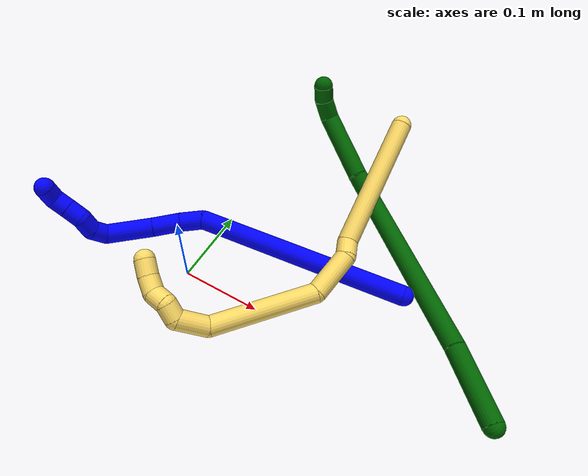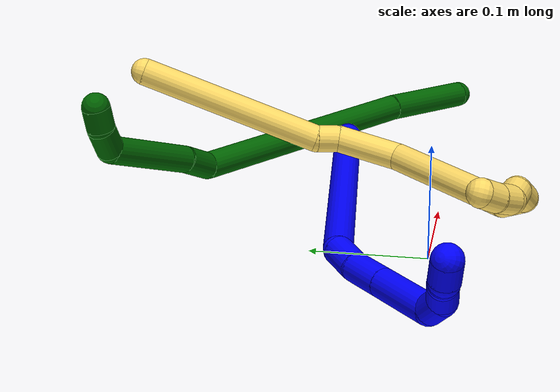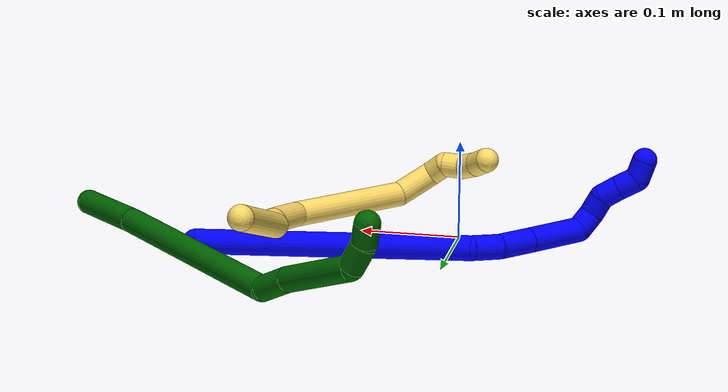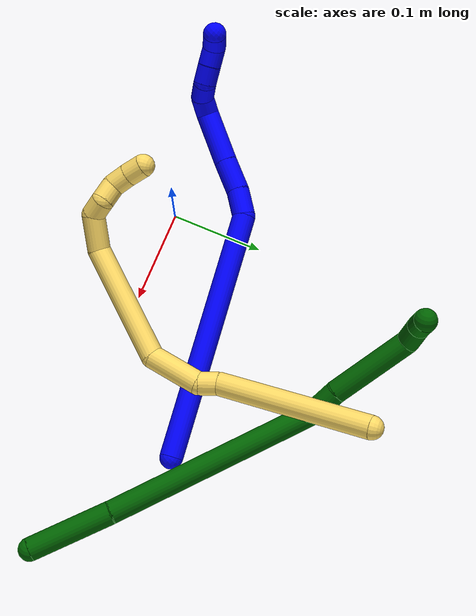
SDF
<sdf version="1.7">
 <world name="default">
  <model name="1">
   <static>0</static>
   <link name="1">
    <collision name="collision-cylinder-e_1_1_4">
     <pose>-0.015821 -0.090305 -0.100804 2.41108 -0.116371 -0.302324</pose>
     <geometry><cylinder><radius>0.0125</radius><length>0.27252</length></cylinder></geometry>
     <surface>
      <friction><ode><mu>1.16</mu><mu2>1.16</mu2><slip1>0</slip1><slip2>0</slip2></ode></friction>
      <contact><ode><kp>1e+06</kp><kd>1</kd><max_vel>0</max_vel><min_depth>0.001</min_depth></ode></contact>
     </surface>
    </collision>
    <visual name="visual-cylinder-e_1_1_4">
     <pose>-0.015821 -0.090305 -0.100804 2.41108 -0.116371 -0.302324</pose>
     <geometry><cylinder><radius>0.0125</radius><length>0.27252</length></cylinder></geometry>
     <material><ambient>0 0 1 1</ambient></material>
    </visual>
    <collision name="collision-cylinder-e_2_4_5">
     <pose>-0.03814 -0.193119 -0.207428 2.00622 -0.440153 -0.674749</pose>
     <geometry><cylinder><radius>0.0125</radius><length>0.030502</length></cylinder></geometry>
     <surface>
      <friction><ode><mu>1.16</mu><mu2>1.16</mu2><slip1>0</slip1><slip2>0</slip2></ode></friction>
      <contact><ode><kp>1e+06</kp><kd>1</kd><max_vel>0</max_vel><min_depth>0.001</min_depth></ode></contact>
     </surface>
    </collision>
    <visual name="visual-cylinder-e_2_4_5">
     <pose>-0.03814 -0.193119 -0.207428 2.00622 -0.440153 -0.674749</pose>
     <geometry><cylinder><radius>0.0125</radius><length>0.030502</length></cylinder></geometry>
     <material><ambient>0 0 1 1</ambient></material>
    </visual>
    <collision name="collision-cylinder-e_3_5_6">
     <pose>-0.055116 -0.219509 -0.218554 1.93597 -0.614188 -0.863529</pose>
     <geometry><cylinder><radius>0.0125</radius><length>0.036364</length></cylinder></geometry>
     <surface>
      <friction><ode><mu>1.16</mu><mu2>1.16</mu2><slip1>0</slip1><slip2>0</slip2></ode></friction>
      <contact><ode><kp>1e+06</kp><kd>1</kd><max_vel>0</max_vel><min_depth>0.001</min_depth></ode></contact>
     </surface>
    </collision>
    <visual name="visual-cylinder-e_3_5_6">
     <pose>-0.055116 -0.219509 -0.218554 1.93597 -0.614188 -0.863529</pose>
     <geometry><cylinder><radius>0.0125</radius><length>0.036364</length></cylinder></geometry>
     <material><ambient>0 0 1 1</ambient></material>
    </visual>
    <collision name="collision-cylinder-e_4_6_7">
     <pose>-0.082606 -0.255721 -0.233542 1.97986 -0.609972 -0.894381</pose>
     <geometry><cylinder><radius>0.0125</radius><length>0.059393</length></cylinder></geometry>
     <surface>
      <friction><ode><mu>1.16</mu><mu2>1.16</mu2><slip1>0</slip1><slip2>0</slip2></ode></friction>
      <contact><ode><kp>1e+06</kp><kd>1</kd><max_vel>0</max_vel><min_depth>0.001</min_depth></ode></contact>
     </surface>
    </collision>
    <visual name="visual-cylinder-e_4_6_7">
     <pose>-0.082606 -0.255721 -0.233542 1.97986 -0.609972 -0.894381</pose>
     <geometry><cylinder><radius>0.0125</radius><length>0.059393</length></cylinder></geometry>
     <material><ambient>0 0 1 1</ambient></material>
    </visual>
    <collision name="collision-cylinder-e_5_7_8">
     <pose>-0.108169 -0.279447 -0.248785 2.89607 -0.980271 -2.6871</pose>
     <geometry><cylinder><radius>0.0125</radius><length>0.020591</length></cylinder></geometry>
     <surface>
      <friction><ode><mu>1.16</mu><mu2>1.16</mu2><slip1>0</slip1><slip2>0</slip2></ode></friction>
      <contact><ode><kp>1e+06</kp><kd>1</kd><max_vel>0</max_vel><min_depth>0.001</min_depth></ode></contact>
     </surface>
    </collision>
    <visual name="visual-cylinder-e_5_7_8">
     <pose>-0.108169 -0.279447 -0.248785 2.89607 -0.980271 -2.6871</pose>
     <geometry><cylinder><radius>0.0125</radius><length>0.020591</length></cylinder></geometry>
     <material><ambient>0 0 1 1</ambient></material>
    </visual>
    <collision name="collision-cylinder-e_6_8_9">
     <pose>-0.1225 -0.278295 -0.262365 -2.83429 -0.601828 2.21584</pose>
     <geometry><cylinder><radius>0.0125</radius><length>0.020414</length></cylinder></geometry>
     <surface>
      <friction><ode><mu>1.16</mu><mu2>1.16</mu2><slip1>0</slip1><slip2>0</slip2></ode></friction>
      <contact><ode><kp>1e+06</kp><kd>1</kd><max_vel>0</max_vel><min_depth>0.001</min_depth></ode></contact>
     </surface>
    </collision>
    <visual name="visual-cylinder-e_6_8_9">
     <pose>-0.1225 -0.278295 -0.262365 -2.83429 -0.601828 2.21584</pose>
     <geometry><cylinder><radius>0.0125</radius><length>0.020414</length></cylinder></geometry>
     <material><ambient>0 0 1 1</ambient></material>
    </visual>
    <collision name="collision-cylinder-e_7_9_10">
     <pose>-0.132285 -0.278046 -0.279274 2.88887 -0.411444 -2.04789</pose>
     <geometry><cylinder><radius>0.0125</radius><length>0.020036</length></cylinder></geometry>
     <surface>
      <friction><ode><mu>1.16</mu><mu2>1.16</mu2><slip1>0</slip1><slip2>0</slip2></ode></friction>
      <contact><ode><kp>1e+06</kp><kd>1</kd><max_vel>0</max_vel><min_depth>0.001</min_depth></ode></contact>
     </surface>
    </collision>
    <visual name="visual-cylinder-e_7_9_10">
     <pose>-0.132285 -0.278046 -0.279274 2.88887 -0.411444 -2.04789</pose>
     <geometry><cylinder><radius>0.0125</radius><length>0.020036</length></cylinder></geometry>
     <material><ambient>0 0 1 1</ambient></material>
    </visual>
    <collision name="collision-cylinder-e_8_10_11">
     <pose>-0.139979 -0.28312 -0.297092 2.83995 -0.375674 -1.79266</pose>
     <geometry><cylinder><radius>0.0125</radius><length>0.020102</length></cylinder></geometry>
     <surface>
      <friction><ode><mu>1.16</mu><mu2>1.16</mu2><slip1>0</slip1><slip2>0</slip2></ode></friction>
      <contact><ode><kp>1e+06</kp><kd>1</kd><max_vel>0</max_vel><min_depth>0.001</min_depth></ode></contact>
     </surface>
    </collision>
    <visual name="visual-cylinder-e_8_10_11">
     <pose>-0.139979 -0.28312 -0.297092 2.83995 -0.375674 -1.79266</pose>
     <geometry><cylinder><radius>0.0125</radius><length>0.020102</length></cylinder></geometry>
     <material><ambient>0 0 1 1</ambient></material>
    </visual>
    <collision name="collision-cylinder-e_9_11_2">
     <pose>-0.15022 -0.282266 -0.312703 -2.64381 -0.71121 1.94131</pose>
     <geometry><cylinder><radius>0.0125</radius><length>0.020079</length></cylinder></geometry>
     <surface>
      <friction><ode><mu>1.16</mu><mu2>1.16</mu2><slip1>0</slip1><slip2>0</slip2></ode></friction>
      <contact><ode><kp>1e+06</kp><kd>1</kd><max_vel>0</max_vel><min_depth>0.001</min_depth></ode></contact>
     </surface>
    </collision>
    <visual name="visual-cylinder-e_9_11_2">
     <pose>-0.15022 -0.282266 -0.312703 -2.64381 -0.71121 1.94131</pose>
     <geometry><cylinder><radius>0.0125</radius><length>0.020079</length></cylinder></geometry>
     <material><ambient>0 0 1 1</ambient></material>
    </visual>
    <collision name="collision-sphere-2">
     <pose>-0.156773 -0.278635 -0.319385 0 -0 0</pose>
     <geometry><sphere><radius>0.0125</radius></sphere></geometry>
     <surface>
      <friction><ode><mu>1.16</mu><mu2>1.16</mu2><slip1>0</slip1><slip2>0</slip2></ode></friction>
      <contact><ode><kp>1e+06</kp><kd>1</kd><max_vel>0</max_vel><min_depth>0.001</min_depth></ode></contact>
     </surface>
    </collision>
    <visual name="visual-sphere-2">
     <pose>-0.156773 -0.278635 -0.319385 0 -0 0</pose>
     <geometry><sphere><radius>0.0125</radius></sphere></geometry>
     <material><ambient>0 0 1 1</ambient></material>
    </visual>
    <collision name="collision-sphere-11">
     <pose>-0.143667 -0.285898 -0.30602 0 -0 0</pose>
     <geometry><sphere><radius>0.0125</radius></sphere></geometry>
     <surface>
      <friction><ode><mu>1.16</mu><mu2>1.16</mu2><slip1>0</slip1><slip2>0</slip2></ode></friction>
      <contact><ode><kp>1e+06</kp><kd>1</kd><max_vel>0</max_vel><min_depth>0.001</min_depth></ode></contact>
     </surface>
    </collision>
    <visual name="visual-sphere-11">
     <pose>-0.143667 -0.285898 -0.30602 0 -0 0</pose>
     <geometry><sphere><radius>0.0125</radius></sphere></geometry>
     <material><ambient>0 0 1 1</ambient></material>
    </visual>
    <collision name="collision-sphere-10">
     <pose>-0.136292 -0.280342 -0.288164 0 -0 0</pose>
     <geometry><sphere><radius>0.0125</radius></sphere></geometry>
     <surface>
      <friction><ode><mu>1.16</mu><mu2>1.16</mu2><slip1>0</slip1><slip2>0</slip2></ode></friction>
      <contact><ode><kp>1e+06</kp><kd>1</kd><max_vel>0</max_vel><min_depth>0.001</min_depth></ode></contact>
     </surface>
    </collision>
    <visual name="visual-sphere-10">
     <pose>-0.136292 -0.280342 -0.288164 0 -0 0</pose>
     <geometry><sphere><radius>0.0125</radius></sphere></geometry>
     <material><ambient>0 0 1 1</ambient></material>
    </visual>
    <collision name="collision-sphere-9">
     <pose>-0.128279 -0.27575 -0.270384 0 -0 0</pose>
     <geometry><sphere><radius>0.0125</radius></sphere></geometry>
     <surface>
      <friction><ode><mu>1.16</mu><mu2>1.16</mu2><slip1>0</slip1><slip2>0</slip2></ode></friction>
      <contact><ode><kp>1e+06</kp><kd>1</kd><max_vel>0</max_vel><min_depth>0.001</min_depth></ode></contact>
     </surface>
    </collision>
    <visual name="visual-sphere-9">
     <pose>-0.128279 -0.27575 -0.270384 0 -0 0</pose>
     <geometry><sphere><radius>0.0125</radius></sphere></geometry>
     <material><ambient>0 0 1 1</ambient></material>
    </visual>
    <collision name="collision-sphere-4">
     <pose>-0.031642 -0.180609 -0.201608 0 -0 0</pose>
     <geometry><sphere><radius>0.0125</radius></sphere></geometry>
     <surface>
      <friction><ode><mu>1.16</mu><mu2>1.16</mu2><slip1>0</slip1><slip2>0</slip2></ode></friction>
      <contact><ode><kp>1e+06</kp><kd>1</kd><max_vel>0</max_vel><min_depth>0.001</min_depth></ode></contact>
     </surface>
    </collision>
    <visual name="visual-sphere-4">
     <pose>-0.031642 -0.180609 -0.201608 0 -0 0</pose>
     <geometry><sphere><radius>0.0125</radius></sphere></geometry>
     <material><ambient>0 0 1 1</ambient></material>
    </visual>
    <collision name="collision-sphere-1">
     <geometry><sphere><radius>0.0125</radius></sphere></geometry>
     <surface>
      <friction><ode><mu>1.16</mu><mu2>1.16</mu2><slip1>0</slip1><slip2>0</slip2></ode></friction>
      <contact><ode><kp>1e+06</kp><kd>1</kd><max_vel>0</max_vel><min_depth>0.001</min_depth></ode></contact>
     </surface>
    </collision>
    <visual name="visual-sphere-1">
     <geometry><sphere><radius>0.0125</radius></sphere></geometry>
     <material><ambient>0 0 1 1</ambient></material>
    </visual>
    <collision name="collision-sphere-8">
     <pose>-0.116722 -0.28084 -0.254345 0 -0 0</pose>
     <geometry><sphere><radius>0.0125</radius></sphere></geometry>
     <surface>
      <friction><ode><mu>1.16</mu><mu2>1.16</mu2><slip1>0</slip1><slip2>0</slip2></ode></friction>
      <contact><ode><kp>1e+06</kp><kd>1</kd><max_vel>0</max_vel><min_depth>0.001</min_depth></ode></contact>
     </surface>
    </collision>
    <visual name="visual-sphere-8">
     <pose>-0.116722 -0.28084 -0.254345 0 -0 0</pose>
     <geometry><sphere><radius>0.0125</radius></sphere></geometry>
     <material><ambient>0 0 1 1</ambient></material>
    </visual>
    <collision name="collision-sphere-5">
     <pose>-0.044638 -0.205629 -0.213248 0 -0 0</pose>
     <geometry><sphere><radius>0.0125</radius></sphere></geometry>
     <surface>
      <friction><ode><mu>1.16</mu><mu2>1.16</mu2><slip1>0</slip1><slip2>0</slip2></ode></friction>
      <contact><ode><kp>1e+06</kp><kd>1</kd><max_vel>0</max_vel><min_depth>0.001</min_depth></ode></contact>
     </surface>
    </collision>
    <visual name="visual-sphere-5">
     <pose>-0.044638 -0.205629 -0.213248 0 -0 0</pose>
     <geometry><sphere><radius>0.0125</radius></sphere></geometry>
     <material><ambient>0 0 1 1</ambient></material>
    </visual>
    <collision name="collision-sphere-6">
     <pose>-0.065594 -0.233388 -0.22386 0 -0 0</pose>
     <geometry><sphere><radius>0.0125</radius></sphere></geometry>
     <surface>
      <friction><ode><mu>1.16</mu><mu2>1.16</mu2><slip1>0</slip1><slip2>0</slip2></ode></friction>
      <contact><ode><kp>1e+06</kp><kd>1</kd><max_vel>0</max_vel><min_depth>0.001</min_depth></ode></contact>
     </surface>
    </collision>
    <visual name="visual-sphere-6">
     <pose>-0.065594 -0.233388 -0.22386 0 -0 0</pose>
     <geometry><sphere><radius>0.0125</radius></sphere></geometry>
     <material><ambient>0 0 1 1</ambient></material>
    </visual>
    <collision name="collision-sphere-7">
     <pose>-0.099617 -0.278054 -0.243224 0 -0 0</pose>
     <geometry><sphere><radius>0.0125</radius></sphere></geometry>
     <surface>
      <friction><ode><mu>1.16</mu><mu2>1.16</mu2><slip1>0</slip1><slip2>0</slip2></ode></friction>
      <contact><ode><kp>1e+06</kp><kd>1</kd><max_vel>0</max_vel><min_depth>0.001</min_depth></ode></contact>
     </surface>
    </collision>
    <visual name="visual-sphere-7">
     <pose>-0.099617 -0.278054 -0.243224 0 -0 0</pose>
     <geometry><sphere><radius>0.0125</radius></sphere></geometry>
     <material><ambient>0 0 1 1</ambient></material>
    </visual>
    <inertial>
     <pose>-0.051188 -0.164071 -0.167883 0 -0 0</pose>
     <mass>0.5</mass>
     <inertia>
      <ixx>0.001089</ixx>
      <ixy>0</ixy>
      <ixz>0</ixz>
      <iyy>-0.001702</iyy>
      <iyz>0</iyz>
      <izz>0.001339</izz>
     </inertia>
    </inertial>
   </link>
   <pose>0.246098 0.101689 0.011497 2.22803 0.640888 1.54403</pose>
  </model>
  <model name="5">
   <static>0</static>
   <link name="5">
    <collision name="collision-cylinder-e_1_1_4">
     <pose>-0.009446 0.003002 -0.08424 -3.10597 -0.111598 2.5242</pose>
     <geometry><cylinder><radius>0.0125</radius><length>0.169642</length></cylinder></geometry>
     <surface>
      <friction><ode><mu>1.16</mu><mu2>1.16</mu2><slip1>0</slip1><slip2>0</slip2></ode></friction>
      <contact><ode><kp>1e+06</kp><kd>1</kd><max_vel>0</max_vel><min_depth>0.001</min_depth></ode></contact>
     </surface>
    </collision>
    <visual name="visual-cylinder-e_1_1_4">
     <pose>-0.009446 0.003002 -0.08424 -3.10597 -0.111598 2.5242</pose>
     <geometry><cylinder><radius>0.0125</radius><length>0.169642</length></cylinder></geometry>
     <material><ambient>1 0.858824 0.4 1</ambient></material>
    </visual>
    <collision name="collision-cylinder-e_2_4_5">
     <pose>-0.015841 0.007069 -0.178664 -3.03743 0.289632 -2.45504</pose>
     <geometry><cylinder><radius>0.0125</radius><length>0.021369</length></cylinder></geometry>
     <surface>
      <friction><ode><mu>1.16</mu><mu2>1.16</mu2><slip1>0</slip1><slip2>0</slip2></ode></friction>
      <contact><ode><kp>1e+06</kp><kd>1</kd><max_vel>0</max_vel><min_depth>0.001</min_depth></ode></contact>
     </surface>
    </collision>
    <visual name="visual-cylinder-e_2_4_5">
     <pose>-0.015841 0.007069 -0.178664 -3.03743 0.289632 -2.45504</pose>
     <geometry><cylinder><radius>0.0125</radius><length>0.021369</length></cylinder></geometry>
     <material><ambient>1 0.858824 0.4 1</ambient></material>
    </visual>
    <collision name="collision-cylinder-e_3_5_6">
     <pose>-0.016336 0.001469 -0.216841 2.90788 -0.122643 -0.963802</pose>
     <geometry><cylinder><radius>0.0125</radius><length>0.057987</length></cylinder></geometry>
     <surface>
      <friction><ode><mu>1.16</mu><mu2>1.16</mu2><slip1>0</slip1><slip2>0</slip2></ode></friction>
      <contact><ode><kp>1e+06</kp><kd>1</kd><max_vel>0</max_vel><min_depth>0.001</min_depth></ode></contact>
     </surface>
    </collision>
    <visual name="visual-cylinder-e_3_5_6">
     <pose>-0.016336 0.001469 -0.216841 2.90788 -0.122643 -0.963802</pose>
     <geometry><cylinder><radius>0.0125</radius><length>0.057987</length></cylinder></geometry>
     <material><ambient>1 0.858824 0.4 1</ambient></material>
    </visual>
    <collision name="collision-cylinder-e_4_6_7">
     <pose>-0.042804 -0.047638 -0.289107 2.37729 -0.357654 -0.845292</pose>
     <geometry><cylinder><radius>0.0125</radius><length>0.130948</length></cylinder></geometry>
     <surface>
      <friction><ode><mu>1.16</mu><mu2>1.16</mu2><slip1>0</slip1><slip2>0</slip2></ode></friction>
      <contact><ode><kp>1e+06</kp><kd>1</kd><max_vel>0</max_vel><min_depth>0.001</min_depth></ode></contact>
     </surface>
    </collision>
    <visual name="visual-cylinder-e_4_6_7">
     <pose>-0.042804 -0.047638 -0.289107 2.37729 -0.357654 -0.845292</pose>
     <geometry><cylinder><radius>0.0125</radius><length>0.130948</length></cylinder></geometry>
     <material><ambient>1 0.858824 0.4 1</ambient></material>
    </visual>
    <collision name="collision-cylinder-e_5_7_8">
     <pose>-0.067493 -0.109269 -0.338409 1.82718 -0.088899 -0.115156</pose>
     <geometry><cylinder><radius>0.0125</radius><length>0.03983</length></cylinder></geometry>
     <surface>
      <friction><ode><mu>1.16</mu><mu2>1.16</mu2><slip1>0</slip1><slip2>0</slip2></ode></friction>
      <contact><ode><kp>1e+06</kp><kd>1</kd><max_vel>0</max_vel><min_depth>0.001</min_depth></ode></contact>
     </surface>
    </collision>
    <visual name="visual-cylinder-e_5_7_8">
     <pose>-0.067493 -0.109269 -0.338409 1.82718 -0.088899 -0.115156</pose>
     <geometry><cylinder><radius>0.0125</radius><length>0.03983</length></cylinder></geometry>
     <material><ambient>1 0.858824 0.4 1</ambient></material>
    </visual>
    <collision name="collision-cylinder-e_6_8_9">
     <pose>-0.069836 -0.137177 -0.338411 1.0477 -0.057025 -0.032948</pose>
     <geometry><cylinder><radius>0.0125</radius><length>0.020165</length></cylinder></geometry>
     <surface>
      <friction><ode><mu>1.16</mu><mu2>1.16</mu2><slip1>0</slip1><slip2>0</slip2></ode></friction>
      <contact><ode><kp>1e+06</kp><kd>1</kd><max_vel>0</max_vel><min_depth>0.001</min_depth></ode></contact>
     </surface>
    </collision>
    <visual name="visual-cylinder-e_6_8_9">
     <pose>-0.069836 -0.137177 -0.338411 1.0477 -0.057025 -0.032948</pose>
     <geometry><cylinder><radius>0.0125</radius><length>0.020165</length></cylinder></geometry>
     <material><ambient>1 0.858824 0.4 1</ambient></material>
    </visual>
    <collision name="collision-cylinder-e_7_9_10">
     <pose>-0.077132 -0.152815 -0.330715 1.2029 -0.736419 -0.517655</pose>
     <geometry><cylinder><radius>0.0125</radius><length>0.020014</length></cylinder></geometry>
     <surface>
      <friction><ode><mu>1.16</mu><mu2>1.16</mu2><slip1>0</slip1><slip2>0</slip2></ode></friction>
      <contact><ode><kp>1e+06</kp><kd>1</kd><max_vel>0</max_vel><min_depth>0.001</min_depth></ode></contact>
     </surface>
    </collision>
    <visual name="visual-cylinder-e_7_9_10">
     <pose>-0.077132 -0.152815 -0.330715 1.2029 -0.736419 -0.517655</pose>
     <geometry><cylinder><radius>0.0125</radius><length>0.020014</length></cylinder></geometry>
     <material><ambient>1 0.858824 0.4 1</ambient></material>
    </visual>
    <collision name="collision-cylinder-e_8_10_11">
     <pose>-0.086829 -0.16621 -0.321032 0.745399 -0.302142 -0.118896</pose>
     <geometry><cylinder><radius>0.0125</radius><length>0.020005</length></cylinder></geometry>
     <surface>
      <friction><ode><mu>1.16</mu><mu2>1.16</mu2><slip1>0</slip1><slip2>0</slip2></ode></friction>
      <contact><ode><kp>1e+06</kp><kd>1</kd><max_vel>0</max_vel><min_depth>0.001</min_depth></ode></contact>
     </surface>
    </collision>
    <visual name="visual-cylinder-e_8_10_11">
     <pose>-0.086829 -0.16621 -0.321032 0.745399 -0.302142 -0.118896</pose>
     <geometry><cylinder><radius>0.0125</radius><length>0.020005</length></cylinder></geometry>
     <material><ambient>1 0.858824 0.4 1</ambient></material>
    </visual>
    <collision name="collision-cylinder-e_9_11_2">
     <pose>-0.091546 -0.178852 -0.30631 0.674858 -0.174578 -0.061387</pose>
     <geometry><cylinder><radius>0.0125</radius><length>0.020041</length></cylinder></geometry>
     <surface>
      <friction><ode><mu>1.16</mu><mu2>1.16</mu2><slip1>0</slip1><slip2>0</slip2></ode></friction>
      <contact><ode><kp>1e+06</kp><kd>1</kd><max_vel>0</max_vel><min_depth>0.001</min_depth></ode></contact>
     </surface>
    </collision>
    <visual name="visual-cylinder-e_9_11_2">
     <pose>-0.091546 -0.178852 -0.30631 0.674858 -0.174578 -0.061387</pose>
     <geometry><cylinder><radius>0.0125</radius><length>0.020041</length></cylinder></geometry>
     <material><ambient>1 0.858824 0.4 1</ambient></material>
    </visual>
    <collision name="collision-sphere-2">
     <pose>-0.093287 -0.185018 -0.298605 0 -0 0</pose>
     <geometry><sphere><radius>0.0125</radius></sphere></geometry>
     <surface>
      <friction><ode><mu>1.16</mu><mu2>1.16</mu2><slip1>0</slip1><slip2>0</slip2></ode></friction>
      <contact><ode><kp>1e+06</kp><kd>1</kd><max_vel>0</max_vel><min_depth>0.001</min_depth></ode></contact>
     </surface>
    </collision>
    <visual name="visual-sphere-2">
     <pose>-0.093287 -0.185018 -0.298605 0 -0 0</pose>
     <geometry><sphere><radius>0.0125</radius></sphere></geometry>
     <material><ambient>1 0.858824 0.4 1</ambient></material>
    </visual>
    <collision name="collision-sphere-11">
     <pose>-0.089806 -0.172687 -0.314015 0 -0 0</pose>
     <geometry><sphere><radius>0.0125</radius></sphere></geometry>
     <surface>
      <friction><ode><mu>1.16</mu><mu2>1.16</mu2><slip1>0</slip1><slip2>0</slip2></ode></friction>
      <contact><ode><kp>1e+06</kp><kd>1</kd><max_vel>0</max_vel><min_depth>0.001</min_depth></ode></contact>
     </surface>
    </collision>
    <visual name="visual-sphere-11">
     <pose>-0.089806 -0.172687 -0.314015 0 -0 0</pose>
     <geometry><sphere><radius>0.0125</radius></sphere></geometry>
     <material><ambient>1 0.858824 0.4 1</ambient></material>
    </visual>
    <collision name="collision-sphere-10">
     <pose>-0.083853 -0.159733 -0.328049 0 -0 0</pose>
     <geometry><sphere><radius>0.0125</radius></sphere></geometry>
     <surface>
      <friction><ode><mu>1.16</mu><mu2>1.16</mu2><slip1>0</slip1><slip2>0</slip2></ode></friction>
      <contact><ode><kp>1e+06</kp><kd>1</kd><max_vel>0</max_vel><min_depth>0.001</min_depth></ode></contact>
     </surface>
    </collision>
    <visual name="visual-sphere-10">
     <pose>-0.083853 -0.159733 -0.328049 0 -0 0</pose>
     <geometry><sphere><radius>0.0125</radius></sphere></geometry>
     <material><ambient>1 0.858824 0.4 1</ambient></material>
    </visual>
    <collision name="collision-sphere-9">
     <pose>-0.070411 -0.145897 -0.333382 0 -0 0</pose>
     <geometry><sphere><radius>0.0125</radius></sphere></geometry>
     <surface>
      <friction><ode><mu>1.16</mu><mu2>1.16</mu2><slip1>0</slip1><slip2>0</slip2></ode></friction>
      <contact><ode><kp>1e+06</kp><kd>1</kd><max_vel>0</max_vel><min_depth>0.001</min_depth></ode></contact>
     </surface>
    </collision>
    <visual name="visual-sphere-9">
     <pose>-0.070411 -0.145897 -0.333382 0 -0 0</pose>
     <geometry><sphere><radius>0.0125</radius></sphere></geometry>
     <material><ambient>1 0.858824 0.4 1</ambient></material>
    </visual>
    <collision name="collision-sphere-4">
     <pose>-0.018892 0.006004 -0.16848 0 -0 0</pose>
     <geometry><sphere><radius>0.0125</radius></sphere></geometry>
     <surface>
      <friction><ode><mu>1.16</mu><mu2>1.16</mu2><slip1>0</slip1><slip2>0</slip2></ode></friction>
      <contact><ode><kp>1e+06</kp><kd>1</kd><max_vel>0</max_vel><min_depth>0.001</min_depth></ode></contact>
     </surface>
    </collision>
    <visual name="visual-sphere-4">
     <pose>-0.018892 0.006004 -0.16848 0 -0 0</pose>
     <geometry><sphere><radius>0.0125</radius></sphere></geometry>
     <material><ambient>1 0.858824 0.4 1</ambient></material>
    </visual>
    <collision name="collision-sphere-1">
     <geometry><sphere><radius>0.0125</radius></sphere></geometry>
     <surface>
      <friction><ode><mu>1.16</mu><mu2>1.16</mu2><slip1>0</slip1><slip2>0</slip2></ode></friction>
      <contact><ode><kp>1e+06</kp><kd>1</kd><max_vel>0</max_vel><min_depth>0.001</min_depth></ode></contact>
     </surface>
    </collision>
    <visual name="visual-sphere-1">
     <geometry><sphere><radius>0.0125</radius></sphere></geometry>
     <material><ambient>1 0.858824 0.4 1</ambient></material>
    </visual>
    <collision name="collision-sphere-8">
     <pose>-0.069261 -0.128457 -0.34344 0 -0 0</pose>
     <geometry><sphere><radius>0.0125</radius></sphere></geometry>
     <surface>
      <friction><ode><mu>1.16</mu><mu2>1.16</mu2><slip1>0</slip1><slip2>0</slip2></ode></friction>
      <contact><ode><kp>1e+06</kp><kd>1</kd><max_vel>0</max_vel><min_depth>0.001</min_depth></ode></contact>
     </surface>
    </collision>
    <visual name="visual-sphere-8">
     <pose>-0.069261 -0.128457 -0.34344 0 -0 0</pose>
     <geometry><sphere><radius>0.0125</radius></sphere></geometry>
     <material><ambient>1 0.858824 0.4 1</ambient></material>
    </visual>
    <collision name="collision-sphere-5">
     <pose>-0.01279 0.008133 -0.188847 0 -0 0</pose>
     <geometry><sphere><radius>0.0125</radius></sphere></geometry>
     <surface>
      <friction><ode><mu>1.16</mu><mu2>1.16</mu2><slip1>0</slip1><slip2>0</slip2></ode></friction>
      <contact><ode><kp>1e+06</kp><kd>1</kd><max_vel>0</max_vel><min_depth>0.001</min_depth></ode></contact>
     </surface>
    </collision>
    <visual name="visual-sphere-5">
     <pose>-0.01279 0.008133 -0.188847 0 -0 0</pose>
     <geometry><sphere><radius>0.0125</radius></sphere></geometry>
     <material><ambient>1 0.858824 0.4 1</ambient></material>
    </visual>
    <collision name="collision-sphere-6">
     <pose>-0.019883 -0.005195 -0.244834 0 -0 0</pose>
     <geometry><sphere><radius>0.0125</radius></sphere></geometry>
     <surface>
      <friction><ode><mu>1.16</mu><mu2>1.16</mu2><slip1>0</slip1><slip2>0</slip2></ode></friction>
      <contact><ode><kp>1e+06</kp><kd>1</kd><max_vel>0</max_vel><min_depth>0.001</min_depth></ode></contact>
     </surface>
    </collision>
    <visual name="visual-sphere-6">
     <pose>-0.019883 -0.005195 -0.244834 0 -0 0</pose>
     <geometry><sphere><radius>0.0125</radius></sphere></geometry>
     <material><ambient>1 0.858824 0.4 1</ambient></material>
    </visual>
    <collision name="collision-sphere-7">
     <pose>-0.065725 -0.090081 -0.333379 0 -0 0</pose>
     <geometry><sphere><radius>0.0125</radius></sphere></geometry>
     <surface>
      <friction><ode><mu>1.16</mu><mu2>1.16</mu2><slip1>0</slip1><slip2>0</slip2></ode></friction>
      <contact><ode><kp>1e+06</kp><kd>1</kd><max_vel>0</max_vel><min_depth>0.001</min_depth></ode></contact>
     </surface>
    </collision>
    <visual name="visual-sphere-7">
     <pose>-0.065725 -0.090081 -0.333379 0 -0 0</pose>
     <geometry><sphere><radius>0.0125</radius></sphere></geometry>
     <material><ambient>1 0.858824 0.4 1</ambient></material>
    </visual>
    <inertial>
     <pose>-0.035411 -0.045158 -0.216046 0 -0 0</pose>
     <mass>0.5</mass>
     <inertia>
      <ixx>-0.000116</ixx>
      <ixy>0</ixy>
      <ixz>0</ixz>
      <iyy>0.000345</iyy>
      <iyz>0</iyz>
      <izz>0.000219</izz>
     </inertia>
    </inertial>
   </link>
   <pose>0.150394 0.277849 0.099372 -1.18991 -0.843417 -0.187416</pose>
  </model>
  <model name="6">
   <static>0</static>
   <link name="6">
    <collision name="collision-cylinder-e_1_1_4">
     <pose>-0.023597 0.034837 -0.016678 -2.01731 -0.548439 0.83998</pose>
     <geometry><cylinder><radius>0.0125</radius><length>0.090523</length></cylinder></geometry>
     <surface>
      <friction><ode><mu>1.16</mu><mu2>1.16</mu2><slip1>0</slip1><slip2>0</slip2></ode></friction>
      <contact><ode><kp>1e+06</kp><kd>1</kd><max_vel>0</max_vel><min_depth>0.001</min_depth></ode></contact>
     </surface>
    </collision>
    <visual name="visual-cylinder-e_1_1_4">
     <pose>-0.023597 0.034837 -0.016678 -2.01731 -0.548439 0.83998</pose>
     <geometry><cylinder><radius>0.0125</radius><length>0.090523</length></cylinder></geometry>
     <material><ambient>0 0.392157 0.003922 1</ambient></material>
    </visual>
    <collision name="collision-cylinder-e_2_4_5">
     <pose>-0.102008 0.16528 -0.072131 -1.95609 -0.488365 0.708605</pose>
     <geometry><cylinder><radius>0.0125</radius><length>0.233654</length></cylinder></geometry>
     <surface>
      <friction><ode><mu>1.16</mu><mu2>1.16</mu2><slip1>0</slip1><slip2>0</slip2></ode></friction>
      <contact><ode><kp>1e+06</kp><kd>1</kd><max_vel>0</max_vel><min_depth>0.001</min_depth></ode></contact>
     </surface>
    </collision>
    <visual name="visual-cylinder-e_2_4_5">
     <pose>-0.102008 0.16528 -0.072131 -1.95609 -0.488365 0.708605</pose>
     <geometry><cylinder><radius>0.0125</radius><length>0.233654</length></cylinder></geometry>
     <material><ambient>0 0.392157 0.003922 1</ambient></material>
    </visual>
    <collision name="collision-cylinder-e_3_5_6">
     <pose>-0.163603 0.26986 -0.124592 -2.56127 -0.39282 1.17561</pose>
     <geometry><cylinder><radius>0.0125</radius><length>0.035431</length></cylinder></geometry>
     <surface>
      <friction><ode><mu>1.16</mu><mu2>1.16</mu2><slip1>0</slip1><slip2>0</slip2></ode></friction>
      <contact><ode><kp>1e+06</kp><kd>1</kd><max_vel>0</max_vel><min_depth>0.001</min_depth></ode></contact>
     </surface>
    </collision>
    <visual name="visual-cylinder-e_3_5_6">
     <pose>-0.163603 0.26986 -0.124592 -2.56127 -0.39282 1.17561</pose>
     <geometry><cylinder><radius>0.0125</radius><length>0.035431</length></cylinder></geometry>
     <material><ambient>0 0.392157 0.003922 1</ambient></material>
    </visual>
    <collision name="collision-cylinder-e_4_6_7">
     <pose>-0.191633 0.305704 -0.168814 -2.41995 -0.481429 1.1535</pose>
     <geometry><cylinder><radius>0.0125</radius><length>0.091781</length></cylinder></geometry>
     <surface>
      <friction><ode><mu>1.16</mu><mu2>1.16</mu2><slip1>0</slip1><slip2>0</slip2></ode></friction>
      <contact><ode><kp>1e+06</kp><kd>1</kd><max_vel>0</max_vel><min_depth>0.001</min_depth></ode></contact>
     </surface>
    </collision>
    <visual name="visual-cylinder-e_4_6_7">
     <pose>-0.191633 0.305704 -0.168814 -2.41995 -0.481429 1.1535</pose>
     <geometry><cylinder><radius>0.0125</radius><length>0.091781</length></cylinder></geometry>
     <material><ambient>0 0.392157 0.003922 1</ambient></material>
    </visual>
    <collision name="collision-cylinder-e_5_7_8">
     <pose>-0.217203 0.331765 -0.212452 3.07993 -0.317925 -2.76146</pose>
     <geometry><cylinder><radius>0.0125</radius><length>0.027642</length></cylinder></geometry>
     <surface>
      <friction><ode><mu>1.16</mu><mu2>1.16</mu2><slip1>0</slip1><slip2>0</slip2></ode></friction>
      <contact><ode><kp>1e+06</kp><kd>1</kd><max_vel>0</max_vel><min_depth>0.001</min_depth></ode></contact>
     </surface>
    </collision>
    <visual name="visual-cylinder-e_5_7_8">
     <pose>-0.217203 0.331765 -0.212452 3.07993 -0.317925 -2.76146</pose>
     <geometry><cylinder><radius>0.0125</radius><length>0.027642</length></cylinder></geometry>
     <material><ambient>0 0.392157 0.003922 1</ambient></material>
    </visual>
    <collision name="collision-cylinder-e_6_8_2">
     <pose>-0.225641 0.327307 -0.23448 2.75351 -0.4036 -1.61103</pose>
     <geometry><cylinder><radius>0.0125</radius><length>0.02097</length></cylinder></geometry>
     <surface>
      <friction><ode><mu>1.16</mu><mu2>1.16</mu2><slip1>0</slip1><slip2>0</slip2></ode></friction>
      <contact><ode><kp>1e+06</kp><kd>1</kd><max_vel>0</max_vel><min_depth>0.001</min_depth></ode></contact>
     </surface>
    </collision>
    <visual name="visual-cylinder-e_6_8_2">
     <pose>-0.225641 0.327307 -0.23448 2.75351 -0.4036 -1.61103</pose>
     <geometry><cylinder><radius>0.0125</radius><length>0.02097</length></cylinder></geometry>
     <material><ambient>0 0.392157 0.003922 1</ambient></material>
    </visual>
    <collision name="collision-sphere-2">
     <pose>-0.229759 0.323658 -0.243406 0 -0 0</pose>
     <geometry><sphere><radius>0.0125</radius></sphere></geometry>
     <surface>
      <friction><ode><mu>1.16</mu><mu2>1.16</mu2><slip1>0</slip1><slip2>0</slip2></ode></friction>
      <contact><ode><kp>1e+06</kp><kd>1</kd><max_vel>0</max_vel><min_depth>0.001</min_depth></ode></contact>
     </surface>
    </collision>
    <visual name="visual-sphere-2">
     <pose>-0.229759 0.323658 -0.243406 0 -0 0</pose>
     <geometry><sphere><radius>0.0125</radius></sphere></geometry>
     <material><ambient>0 0.392157 0.003922 1</ambient></material>
    </visual>
    <collision name="collision-sphere-4">
     <pose>-0.047195 0.069674 -0.033357 0 -0 0</pose>
     <geometry><sphere><radius>0.0125</radius></sphere></geometry>
     <surface>
      <friction><ode><mu>1.16</mu><mu2>1.16</mu2><slip1>0</slip1><slip2>0</slip2></ode></friction>
      <contact><ode><kp>1e+06</kp><kd>1</kd><max_vel>0</max_vel><min_depth>0.001</min_depth></ode></contact>
     </surface>
    </collision>
    <visual name="visual-sphere-4">
     <pose>-0.047195 0.069674 -0.033357 0 -0 0</pose>
     <geometry><sphere><radius>0.0125</radius></sphere></geometry>
     <material><ambient>0 0.392157 0.003922 1</ambient></material>
    </visual>
    <collision name="collision-sphere-1">
     <geometry><sphere><radius>0.0125</radius></sphere></geometry>
     <surface>
      <friction><ode><mu>1.16</mu><mu2>1.16</mu2><slip1>0</slip1><slip2>0</slip2></ode></friction>
      <contact><ode><kp>1e+06</kp><kd>1</kd><max_vel>0</max_vel><min_depth>0.001</min_depth></ode></contact>
     </surface>
    </collision>
    <visual name="visual-sphere-1">
     <geometry><sphere><radius>0.0125</radius></sphere></geometry>
     <material><ambient>0 0.392157 0.003922 1</ambient></material>
    </visual>
    <collision name="collision-sphere-8">
     <pose>-0.221523 0.330956 -0.225555 0 -0 0</pose>
     <geometry><sphere><radius>0.0125</radius></sphere></geometry>
     <surface>
      <friction><ode><mu>1.16</mu><mu2>1.16</mu2><slip1>0</slip1><slip2>0</slip2></ode></friction>
      <contact><ode><kp>1e+06</kp><kd>1</kd><max_vel>0</max_vel><min_depth>0.001</min_depth></ode></contact>
     </surface>
    </collision>
    <visual name="visual-sphere-8">
     <pose>-0.221523 0.330956 -0.225555 0 -0 0</pose>
     <geometry><sphere><radius>0.0125</radius></sphere></geometry>
     <material><ambient>0 0.392157 0.003922 1</ambient></material>
    </visual>
    <collision name="collision-sphere-5">
     <pose>-0.156821 0.260887 -0.110905 0 -0 0</pose>
     <geometry><sphere><radius>0.0125</radius></sphere></geometry>
     <surface>
      <friction><ode><mu>1.16</mu><mu2>1.16</mu2><slip1>0</slip1><slip2>0</slip2></ode></friction>
      <contact><ode><kp>1e+06</kp><kd>1</kd><max_vel>0</max_vel><min_depth>0.001</min_depth></ode></contact>
     </surface>
    </collision>
    <visual name="visual-sphere-5">
     <pose>-0.156821 0.260887 -0.110905 0 -0 0</pose>
     <geometry><sphere><radius>0.0125</radius></sphere></geometry>
     <material><ambient>0 0.392157 0.003922 1</ambient></material>
    </visual>
    <collision name="collision-sphere-6">
     <pose>-0.170384 0.278834 -0.138279 0 -0 0</pose>
     <geometry><sphere><radius>0.0125</radius></sphere></geometry>
     <surface>
      <friction><ode><mu>1.16</mu><mu2>1.16</mu2><slip1>0</slip1><slip2>0</slip2></ode></friction>
      <contact><ode><kp>1e+06</kp><kd>1</kd><max_vel>0</max_vel><min_depth>0.001</min_depth></ode></contact>
     </surface>
    </collision>
    <visual name="visual-sphere-6">
     <pose>-0.170384 0.278834 -0.138279 0 -0 0</pose>
     <geometry><sphere><radius>0.0125</radius></sphere></geometry>
     <material><ambient>0 0.392157 0.003922 1</ambient></material>
    </visual>
    <collision name="collision-sphere-7">
     <pose>-0.212883 0.332574 -0.199349 0 -0 0</pose>
     <geometry><sphere><radius>0.0125</radius></sphere></geometry>
     <surface>
      <friction><ode><mu>1.16</mu><mu2>1.16</mu2><slip1>0</slip1><slip2>0</slip2></ode></friction>
      <contact><ode><kp>1e+06</kp><kd>1</kd><max_vel>0</max_vel><min_depth>0.001</min_depth></ode></contact>
     </surface>
    </collision>
    <visual name="visual-sphere-7">
     <pose>-0.212883 0.332574 -0.199349 0 -0 0</pose>
     <geometry><sphere><radius>0.0125</radius></sphere></geometry>
     <material><ambient>0 0.392157 0.003922 1</ambient></material>
    </visual>
    <inertial>
     <pose>-0.120182 0.19085 -0.098122 0 -0 0</pose>
     <mass>0.5</mass>
     <inertia>
      <ixx>0.001477</ixx>
      <ixy>0</ixy>
      <ixz>0</ixz>
      <iyy>0.000742</iyy>
      <iyz>0</iyz>
      <izz>-0.000416</izz>
     </inertia>
    </inertial>
   </link>
   <pose>0.388501 0.004814 0.011961 -2.54986 0.325813 -1.76161</pose>
  </model>
 </world>
</sdf>
